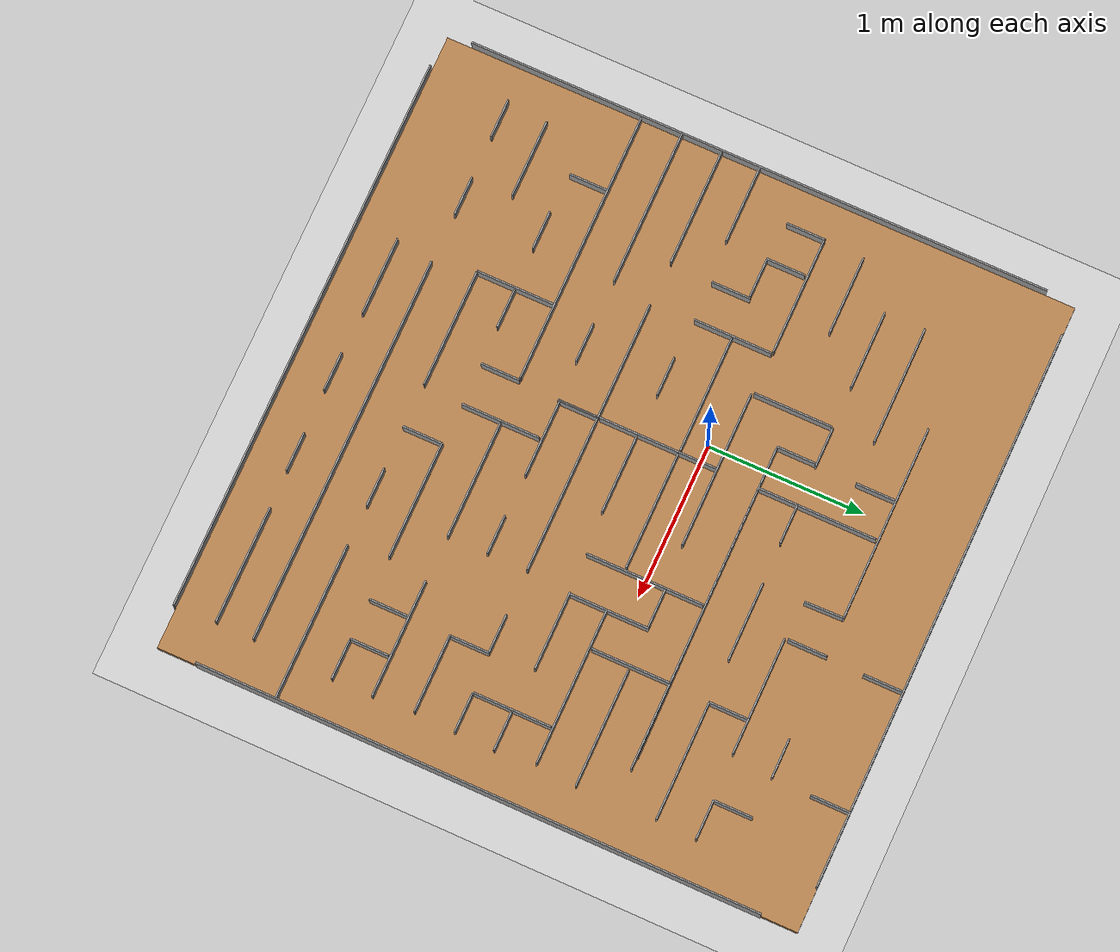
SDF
<sdf version="1.7">
 <world name="default">
  <light name="sun" type="directional">
   <pose>0 0 10 0 -0 0</pose>
   <diffuse>0.8 0.8 0.8 1</diffuse>
   <specular>0.2 0.2 0.2 1</specular>
   <attenuation>
    <range>1000</range>
    <constant>0.9</constant>
    <linear>0.01</linear>
    <quadratic>0.001</quadratic>
   </attenuation>
   <direction>-0.5 0.1 -0.9</direction>
   <spot><inner_angle>0</inner_angle><outer_angle>0</outer_angle><falloff>0</falloff></spot>
  </light>
  <model name="ground_plane">
   <static>1</static>
   <link name="link">
    <collision name="collision">
     <geometry><plane><normal>0 0 1</normal><size>100 100</size></plane></geometry>
     <surface><friction><ode><mu>100</mu><mu2>50</mu2></ode></friction></surface>
    </collision>
    <visual name="visual">
     <cast_shadows>0</cast_shadows>
     <geometry><plane><normal>0 0 1</normal><size>100 100</size></plane></geometry>
     <material>
      <script><uri>file://media/materials/scripts/gazebo.material</uri><name>Gazebo/Grey</name></script>
     </material>
    </visual>
   </link>
  </model>
  <gravity>0 0 -9.8</gravity>
  <magnetic_field>6e-06 2.3e-05 -4.2e-05</magnetic_field>
  <atmosphere type="adiabatic"/>
  <physics type="ode">
   <max_step_size>0.001</max_step_size>
   <real_time_factor>1</real_time_factor>
   <real_time_update_rate>1000</real_time_update_rate>
  </physics>
  <scene><ambient>0.4 0.4 0.4 1</ambient><background>0.7 0.7 0.7 1</background><shadows>1</shadows></scene>
  <audio><device>default</device></audio>
  <spherical_coordinates>
   <surface_model>EARTH_WGS84</surface_model>
   <latitude_deg>0</latitude_deg>
   <longitude_deg>0</longitude_deg>
   <elevation>0</elevation>
   <heading_deg>0</heading_deg>
  </spherical_coordinates>
  <model name="maze">
   <pose>0.391095 -0.403785 0 0 -0 0</pose>
   <link name="Wall_0">
    <collision name="Wall_0_Collision">
     <geometry><box><size>3.75 0.01 0.15</size></box></geometry>
     <pose>0 0 0.075 0 -0 0</pose>
    </collision>
    <visual name="Wall_0_Visual">
     <pose>0 0 0.075 0 -0 0</pose>
     <geometry><box><size>3.75 0.01 0.15</size></box></geometry>
     <material>
      <script><uri>file://media/materials/scripts/gazebo.material</uri><name>Gazebo/Grey</name></script>
      <ambient>1 1 1 1</ambient>
     </material>
     <meta><layer>0</layer></meta>
    </visual>
    <pose>-2.04852 -0.009278 0 0 -0 -1.5708</pose>
   </link>
   <link name="Wall_102">
    <collision name="Wall_102_Collision">
     <geometry><box><size>0.25 0.01 0.15</size></box></geometry>
     <pose>0 0 0.075 0 -0 0</pose>
    </collision>
    <visual name="Wall_102_Visual">
     <pose>0 0 0.075 0 -0 0</pose>
     <geometry><box><size>0.25 0.01 0.15</size></box></geometry>
     <material>
      <script><uri>file://media/materials/scripts/gazebo.material</uri><name>Gazebo/Grey</name></script>
      <ambient>1 1 1 1</ambient>
     </material>
     <meta><layer>0</layer></meta>
    </visual>
    <pose>-1.54623 0.39257 0 0 -0 -1.5708</pose>
   </link>
   <link name="Wall_104">
    <collision name="Wall_104_Collision">
     <geometry><box><size>0.25 0.01 0.15</size></box></geometry>
     <pose>0 0 0.075 0 -0 0</pose>
    </collision>
    <visual name="Wall_104_Visual">
     <pose>0 0 0.075 0 -0 0</pose>
     <geometry><box><size>0.25 0.01 0.15</size></box></geometry>
     <material>
      <script><uri>file://media/materials/scripts/gazebo.material</uri><name>Gazebo/Grey</name></script>
      <ambient>1 1 1 1</ambient>
     </material>
     <meta><layer>0</layer></meta>
    </visual>
    <pose>-1.28266 0.153837 0 0 -0 1.5708</pose>
   </link>
   <link name="Wall_106">
    <collision name="Wall_106_Collision">
     <geometry><box><size>0.25 0.01 0.15</size></box></geometry>
     <pose>0 0 0.075 0 -0 0</pose>
    </collision>
    <visual name="Wall_106_Visual">
     <pose>0 0 0.075 0 -0 0</pose>
     <geometry><box><size>0.25 0.01 0.15</size></box></geometry>
     <material>
      <script><uri>file://media/materials/scripts/gazebo.material</uri><name>Gazebo/Grey</name></script>
      <ambient>1 1 1 1</ambient>
     </material>
     <meta><layer>0</layer></meta>
    </visual>
    <pose>-1.41897 0.271372 0 0 -0 0</pose>
   </link>
   <link name="Wall_108">
    <collision name="Wall_108_Collision">
     <geometry><box><size>0.25 0.01 0.15</size></box></geometry>
     <pose>0 0 0.075 0 -0 0</pose>
    </collision>
    <visual name="Wall_108_Visual">
     <pose>0 0 0.075 0 -0 0</pose>
     <geometry><box><size>0.25 0.01 0.15</size></box></geometry>
     <material>
      <script><uri>file://media/materials/scripts/gazebo.material</uri><name>Gazebo/Grey</name></script>
      <ambient>1 1 1 1</ambient>
     </material>
     <meta><layer>0</layer></meta>
    </visual>
    <pose>-0.645595 0.014278 0 0 -0 0</pose>
   </link>
   <link name="Wall_11">
    <collision name="Wall_11_Collision">
     <geometry><box><size>1.25042 0.01 0.15</size></box></geometry>
     <pose>0 0 0.075 0 -0 0</pose>
    </collision>
    <visual name="Wall_11_Visual">
     <pose>0 0 0.075 0 -0 0</pose>
     <geometry><box><size>1.25042 0.01 0.15</size></box></geometry>
     <material>
      <script><uri>file://media/materials/scripts/gazebo.material</uri><name>Gazebo/Grey</name></script>
      <ambient>1 1 1 1</ambient>
     </material>
     <meta><layer>0</layer></meta>
    </visual>
    <pose>-0.363743 1.55748 0 0 -0 -0.000371</pose>
   </link>
   <link name="Wall_110">
    <collision name="Wall_110_Collision">
     <geometry><box><size>0.75 0.01 0.15</size></box></geometry>
     <pose>0 0 0.075 0 -0 0</pose>
    </collision>
    <visual name="Wall_110_Visual">
     <pose>0 0 0.075 0 -0 0</pose>
     <geometry><box><size>0.75 0.01 0.15</size></box></geometry>
     <material>
      <script><uri>file://media/materials/scripts/gazebo.material</uri><name>Gazebo/Grey</name></script>
      <ambient>1 1 1 1</ambient>
     </material>
     <meta><layer>0</layer></meta>
    </visual>
    <pose>0.128728 0.272801 0 0 -0 0</pose>
   </link>
   <link name="Wall_112">
    <collision name="Wall_112_Collision">
     <geometry><box><size>0.75 0.01 0.15</size></box></geometry>
     <pose>0 0 0.075 0 -0 0</pose>
    </collision>
    <visual name="Wall_112_Visual">
     <pose>0 0 0.075 0 -0 0</pose>
     <geometry><box><size>0.75 0.01 0.15</size></box></geometry>
     <material>
      <script><uri>file://media/materials/scripts/gazebo.material</uri><name>Gazebo/Grey</name></script>
      <ambient>1 1 1 1</ambient>
     </material>
     <meta><layer>0</layer></meta>
    </visual>
    <pose>1.42859 0.536 0 0 -0 0</pose>
   </link>
   <link name="Wall_114">
    <collision name="Wall_114_Collision">
     <geometry><box><size>1 0.01 0.15</size></box></geometry>
     <pose>0 0 0.075 0 -0 0</pose>
    </collision>
    <visual name="Wall_114_Visual">
     <pose>0 0 0.075 0 -0 0</pose>
     <geometry><box><size>1 0.01 0.15</size></box></geometry>
     <material>
      <script><uri>file://media/materials/scripts/gazebo.material</uri><name>Gazebo/Grey</name></script>
      <ambient>1 1 1 1</ambient>
     </material>
     <meta><layer>0</layer></meta>
    </visual>
    <pose>1.27747 0.273813 0 0 -0 0</pose>
   </link>
   <link name="Wall_116">
    <collision name="Wall_116_Collision">
     <geometry><box><size>0.5 0.01 0.15</size></box></geometry>
     <pose>0 0 0.075 0 -0 0</pose>
    </collision>
    <visual name="Wall_116_Visual">
     <pose>0 0 0.075 0 -0 0</pose>
     <geometry><box><size>0.5 0.01 0.15</size></box></geometry>
     <material>
      <script><uri>file://media/materials/scripts/gazebo.material</uri><name>Gazebo/Grey</name></script>
      <ambient>1 1 1 1</ambient>
     </material>
     <meta><layer>0</layer></meta>
    </visual>
    <pose>1.02562 0.538471 0 0 -0 -1.5708</pose>
   </link>
   <link name="Wall_119">
    <collision name="Wall_119_Collision">
     <geometry><box><size>0.25 0.01 0.15</size></box></geometry>
     <pose>0 0 0.075 0 -0 0</pose>
    </collision>
    <visual name="Wall_119_Visual">
     <pose>0 0 0.075 0 -0 0</pose>
     <geometry><box><size>0.25 0.01 0.15</size></box></geometry>
     <material>
      <script><uri>file://media/materials/scripts/gazebo.material</uri><name>Gazebo/Grey</name></script>
      <ambient>1 1 1 1</ambient>
     </material>
     <meta><layer>0</layer></meta>
    </visual>
    <pose>-1.79408 0.415077 0 0 -0 -1.5708</pose>
   </link>
   <link name="Wall_121">
    <collision name="Wall_121_Collision">
     <geometry><box><size>0.5 0.01 0.15</size></box></geometry>
     <pose>0 0 0.075 0 -0 0</pose>
    </collision>
    <visual name="Wall_121_Visual">
     <pose>0 0 0.075 0 -0 0</pose>
     <geometry><box><size>0.5 0.01 0.15</size></box></geometry>
     <material>
      <script><uri>file://media/materials/scripts/gazebo.material</uri><name>Gazebo/Grey</name></script>
      <ambient>1 1 1 1</ambient>
     </material>
     <meta><layer>0</layer></meta>
    </visual>
    <pose>-0.774171 -1.01942 0 0 -0 -1.5708</pose>
   </link>
   <link name="Wall_126">
    <collision name="Wall_126_Collision">
     <geometry><box><size>0.25 0.01 0.15</size></box></geometry>
     <pose>0 0 0.075 0 -0 0</pose>
    </collision>
    <visual name="Wall_126_Visual">
     <pose>0 0 0.075 0 -0 0</pose>
     <geometry><box><size>0.25 0.01 0.15</size></box></geometry>
     <material>
      <script><uri>file://media/materials/scripts/gazebo.material</uri><name>Gazebo/Grey</name></script>
      <ambient>1 1 1 1</ambient>
     </material>
     <meta><layer>0</layer></meta>
    </visual>
    <pose>-0.636927 -0.507446 0 0 -0 0</pose>
   </link>
   <link name="Wall_129">
    <collision name="Wall_129_Collision">
     <geometry><box><size>1 0.01 0.15</size></box></geometry>
     <pose>0 0 0.075 0 -0 0</pose>
    </collision>
    <visual name="Wall_129_Visual">
     <pose>0 0 0.075 0 -0 0</pose>
     <geometry><box><size>1 0.01 0.15</size></box></geometry>
     <material>
      <script><uri>file://media/materials/scripts/gazebo.material</uri><name>Gazebo/Grey</name></script>
      <ambient>1 1 1 1</ambient>
     </material>
     <meta><layer>0</layer></meta>
    </visual>
    <pose>-1.54984 -0.503396 0 0 -0 0</pose>
   </link>
   <link name="Wall_131">
    <collision name="Wall_131_Collision">
     <geometry><box><size>0.25 0.01 0.15</size></box></geometry>
     <pose>0 0 0.075 0 -0 0</pose>
    </collision>
    <visual name="Wall_131_Visual">
     <pose>0 0 0.075 0 -0 0</pose>
     <geometry><box><size>0.25 0.01 0.15</size></box></geometry>
     <material>
      <script><uri>file://media/materials/scripts/gazebo.material</uri><name>Gazebo/Grey</name></script>
      <ambient>1 1 1 1</ambient>
     </material>
     <meta><layer>0</layer></meta>
    </visual>
    <pose>0.632906 -0.503537 0 0 -0 0</pose>
   </link>
   <link name="Wall_133">
    <collision name="Wall_133_Collision">
     <geometry><box><size>0.75 0.01 0.25</size></box></geometry>
     <pose>0 0 0.075 0 -0 0</pose>
    </collision>
    <visual name="Wall_133_Visual">
     <pose>0 0 0.075 0 -0 0</pose>
     <geometry><box><size>0.75 0.01 0.15</size></box></geometry>
     <material>
      <script><uri>file://media/materials/scripts/gazebo.material</uri><name>Gazebo/Grey</name></script>
      <ambient>1 1 1 1</ambient>
     </material>
     <meta><layer>0</layer></meta>
    </visual>
    <pose>0.385074 -0.758803 0 0 -0 0</pose>
   </link>
   <link name="Wall_135">
    <collision name="Wall_135_Collision">
     <geometry><box><size>0.75 0.01 0.15</size></box></geometry>
     <pose>0 0 0.075 0 -0 0</pose>
    </collision>
    <visual name="Wall_135_Visual">
     <pose>0 0 0.075 0 -0 0</pose>
     <geometry><box><size>0.75 0.01 0.15</size></box></geometry>
     <material>
      <script><uri>file://media/materials/scripts/gazebo.material</uri><name>Gazebo/Grey</name></script>
      <ambient>1 1 1 1</ambient>
     </material>
     <meta><layer>0</layer></meta>
    </visual>
    <pose>0.636902 -1.02178 0 0 -0 0</pose>
   </link>
   <link name="Wall_137">
    <collision name="Wall_137_Collision">
     <geometry><box><size>0.25 0.01 0.15</size></box></geometry>
     <pose>0 0 0.075 0 -0 0</pose>
    </collision>
    <visual name="Wall_137_Visual">
     <pose>0 0 0.075 0 -0 0</pose>
     <geometry><box><size>0.25 0.01 0.15</size></box></geometry>
     <material>
      <script><uri>file://media/materials/scripts/gazebo.material</uri><name>Gazebo/Grey</name></script>
      <ambient>1 1 1 1</ambient>
     </material>
     <meta><layer>0</layer></meta>
    </visual>
    <pose>-0.270621 -0.887203 0 0 -0 -1.5708</pose>
   </link>
   <link name="Wall_139">
    <collision name="Wall_139_Collision">
     <geometry><box><size>0.5 0.01 0.15</size></box></geometry>
     <pose>0 0 0.075 0 -0 0</pose>
    </collision>
    <visual name="Wall_139_Visual">
     <pose>0 0 0.075 0 -0 0</pose>
     <geometry><box><size>0.5 0.01 0.15</size></box></geometry>
     <material>
      <script><uri>file://media/materials/scripts/gazebo.material</uri><name>Gazebo/Grey</name></script>
      <ambient>1 1 1 1</ambient>
     </material>
     <meta><layer>0</layer></meta>
    </visual>
    <pose>-1.53306 -1.27119 0 0 -0 0</pose>
   </link>
   <link name="Wall_141">
    <collision name="Wall_141_Collision">
     <geometry><box><size>2.5 0.01 0.15</size></box></geometry>
     <pose>0 0 0.075 0 -0 0</pose>
    </collision>
    <visual name="Wall_141_Visual">
     <pose>0 0 0.075 0 -0 0</pose>
     <geometry><box><size>2.5 0.01 0.15</size></box></geometry>
     <material>
      <script><uri>file://media/materials/scripts/gazebo.material</uri><name>Gazebo/Grey</name></script>
      <ambient>1 1 1 1</ambient>
     </material>
     <meta><layer>0</layer></meta>
    </visual>
    <pose>0.533615 -1.54052 0 0 -0 0</pose>
   </link>
   <link name="Wall_143">
    <collision name="Wall_143_Collision">
     <geometry><box><size>0.25 0.01 0.15</size></box></geometry>
     <pose>0 0 0.075 0 -0 0</pose>
    </collision>
    <visual name="Wall_143_Visual">
     <pose>0 0 0.075 0 -0 0</pose>
     <geometry><box><size>0.25 0.01 0.15</size></box></geometry>
     <material>
      <script><uri>file://media/materials/scripts/gazebo.material</uri><name>Gazebo/Grey</name></script>
      <ambient>1 1 1 1</ambient>
     </material>
     <meta><layer>0</layer></meta>
    </visual>
    <pose>-1.68685 -1.5361 0 0 -0 0</pose>
   </link>
   <link name="Wall_145">
    <collision name="Wall_145_Collision">
     <geometry><box><size>0.25 0.01 0.15</size></box></geometry>
     <pose>0 0 0.075 0 -0 0</pose>
    </collision>
    <visual name="Wall_145_Visual">
     <pose>0 0 0.075 0 -0 0</pose>
     <geometry><box><size>0.25 0.01 0.15</size></box></geometry>
     <material>
      <script><uri>file://media/materials/scripts/gazebo.material</uri><name>Gazebo/Grey</name></script>
      <ambient>1 1 1 1</ambient>
     </material>
     <meta><layer>0</layer></meta>
    </visual>
    <pose>-1.16158 -1.53572 0 0 -0 0</pose>
   </link>
   <link name="Wall_147">
    <collision name="Wall_147_Collision">
     <geometry><box><size>0.5 0.01 0.15</size></box></geometry>
     <pose>0 0 0.075 0 -0 0</pose>
    </collision>
    <visual name="Wall_147_Visual">
     <pose>0 0 0.075 0 -0 0</pose>
     <geometry><box><size>0.5 0.01 0.15</size></box></geometry>
     <material>
      <script><uri>file://media/materials/scripts/gazebo.material</uri><name>Gazebo/Grey</name></script>
      <ambient>1 1 1 1</ambient>
     </material>
     <meta><layer>0</layer></meta>
    </visual>
    <pose>-0.510057 -1.78164 0 0 -0 0</pose>
   </link>
   <link name="Wall_149">
    <collision name="Wall_149_Collision">
     <geometry><box><size>0.25 0.01 0.15</size></box></geometry>
     <pose>0 0 0.075 0 -0 0</pose>
    </collision>
    <visual name="Wall_149_Visual">
     <pose>0 0 0.075 0 -0 0</pose>
     <geometry><box><size>0.25 0.01 0.15</size></box></geometry>
     <material>
      <script><uri>file://media/materials/scripts/gazebo.material</uri><name>Gazebo/Grey</name></script>
      <ambient>1 1 1 1</ambient>
     </material>
     <meta><layer>0</layer></meta>
    </visual>
    <pose>0.13213 -1.79207 0 0 -0 0</pose>
   </link>
   <link name="Wall_15">
    <collision name="Wall_15_Collision">
     <geometry><box><size>0.25 0.01 0.15</size></box></geometry>
     <pose>0 0 0.075 0 -0 0</pose>
    </collision>
    <visual name="Wall_15_Visual">
     <pose>0 0 0.075 0 -0 0</pose>
     <geometry><box><size>0.25 0.01 0.15</size></box></geometry>
     <material>
      <script><uri>file://media/materials/scripts/gazebo.material</uri><name>Gazebo/Grey</name></script>
      <ambient>1 1 1 1</ambient>
     </material>
     <meta><layer>0</layer></meta>
    </visual>
    <pose>0.259424 1.43403 0 0 -0 1.59547</pose>
   </link>
   <link name="Wall_151">
    <collision name="Wall_151_Collision">
     <geometry><box><size>0.25 0.01 0.15</size></box></geometry>
     <pose>0 0 0.075 0 -0 0</pose>
    </collision>
    <visual name="Wall_151_Visual">
     <pose>0 0 0.075 0 -0 0</pose>
     <geometry><box><size>0.25 0.01 0.15</size></box></geometry>
     <material>
      <script><uri>file://media/materials/scripts/gazebo.material</uri><name>Gazebo/Grey</name></script>
      <ambient>1 1 1 1</ambient>
     </material>
     <meta><layer>0</layer></meta>
    </visual>
    <pose>0.663706 -1.78969 0 0 -0 0</pose>
   </link>
   <link name="Wall_153">
    <collision name="Wall_153_Collision">
     <geometry><box><size>0.75 0.01 0.15</size></box></geometry>
     <pose>0 0 0.075 0 -0 0</pose>
    </collision>
    <visual name="Wall_153_Visual">
     <pose>0 0 0.075 0 -0 0</pose>
     <geometry><box><size>0.75 0.01 0.15</size></box></geometry>
     <material>
      <script><uri>file://media/materials/scripts/gazebo.material</uri><name>Gazebo/Grey</name></script>
      <ambient>1 1 1 1</ambient>
     </material>
     <meta><layer>0</layer></meta>
    </visual>
    <pose>1.40532 -1.78262 0 0 -0 0</pose>
   </link>
   <link name="Wall_155">
    <collision name="Wall_155_Collision">
     <geometry><box><size>0.75 0.01 0.15</size></box></geometry>
     <pose>0 0 0.075 0 -0 0</pose>
    </collision>
    <visual name="Wall_155_Visual">
     <pose>0 0 0.075 0 -0 0</pose>
     <geometry><box><size>0.75 0.01 0.15</size></box></geometry>
     <material>
      <script><uri>file://media/materials/scripts/gazebo.material</uri><name>Gazebo/Grey</name></script>
      <ambient>1 1 1 1</ambient>
     </material>
     <meta><layer>0</layer></meta>
    </visual>
    <pose>-0.39167 -1.26751 0 0 -0 0</pose>
   </link>
   <link name="Wall_157">
    <collision name="Wall_157_Collision">
     <geometry><box><size>1 0.01 0.15</size></box></geometry>
     <pose>0 0 0.075 0 -0 0</pose>
    </collision>
    <visual name="Wall_157_Visual">
     <pose>0 0 0.075 0 -0 0</pose>
     <geometry><box><size>1 0.01 0.15</size></box></geometry>
     <material>
      <script><uri>file://media/materials/scripts/gazebo.material</uri><name>Gazebo/Grey</name></script>
      <ambient>1 1 1 1</ambient>
     </material>
     <meta><layer>0</layer></meta>
    </visual>
    <pose>1.54664 -1.27343 0 0 -0 0</pose>
   </link>
   <link name="Wall_159">
    <collision name="Wall_159_Collision">
     <geometry><box><size>0.25 0.01 0.15</size></box></geometry>
     <pose>0 0 0.075 0 -0 0</pose>
    </collision>
    <visual name="Wall_159_Visual">
     <pose>0 0 0.075 0 -0 0</pose>
     <geometry><box><size>0.25 0.01 0.15</size></box></geometry>
     <material>
      <script><uri>file://media/materials/scripts/gazebo.material</uri><name>Gazebo/Grey</name></script>
      <ambient>1 1 1 1</ambient>
     </material>
     <meta><layer>0</layer></meta>
    </visual>
    <pose>0.265955 -1.15096 0 0 -0 -1.5708</pose>
   </link>
   <link name="Wall_161">
    <collision name="Wall_161_Collision">
     <geometry><box><size>0.25 0.01 0.15</size></box></geometry>
     <pose>0 0 0.075 0 -0 0</pose>
    </collision>
    <visual name="Wall_161_Visual">
     <pose>0 0 0.075 0 -0 0</pose>
     <geometry><box><size>0.25 0.01 0.15</size></box></geometry>
     <material>
      <script><uri>file://media/materials/scripts/gazebo.material</uri><name>Gazebo/Grey</name></script>
      <ambient>1 1 1 1</ambient>
     </material>
     <meta><layer>0</layer></meta>
    </visual>
    <pose>0.664962 -1.26981 0 0 -0 0</pose>
   </link>
   <link name="Wall_163">
    <collision name="Wall_163_Collision">
     <geometry><box><size>0.25 0.01 0.15</size></box></geometry>
     <pose>0 0 0.075 0 -0 0</pose>
    </collision>
    <visual name="Wall_163_Visual">
     <pose>0 0 0.075 0 -0 0</pose>
     <geometry><box><size>0.25 0.01 0.15</size></box></geometry>
     <material>
      <script><uri>file://media/materials/scripts/gazebo.material</uri><name>Gazebo/Grey</name></script>
      <ambient>1 1 1 1</ambient>
     </material>
     <meta><layer>0</layer></meta>
    </visual>
    <pose>1.68471 -1.02328 0 0 -0 0</pose>
   </link>
   <link name="Wall_165">
    <collision name="Wall_165_Collision">
     <geometry><box><size>0.75 0.01 0.15</size></box></geometry>
     <pose>0 0 0.075 0 -0 0</pose>
    </collision>
    <visual name="Wall_165_Visual">
     <pose>0 0 0.075 0 -0 0</pose>
     <geometry><box><size>0.75 0.01 0.15</size></box></geometry>
     <material>
      <script><uri>file://media/materials/scripts/gazebo.material</uri><name>Gazebo/Grey</name></script>
      <ambient>1 1 1 1</ambient>
     </material>
     <meta><layer>0</layer></meta>
    </visual>
    <pose>1.43081 -0.765344 0 0 -0 0</pose>
   </link>
   <link name="Wall_167">
    <collision name="Wall_167_Collision">
     <geometry><box><size>0.25 0.01 0.15</size></box></geometry>
     <pose>0 0 0.075 0 -0 0</pose>
    </collision>
    <visual name="Wall_167_Visual">
     <pose>0 0 0.075 0 -0 0</pose>
     <geometry><box><size>0.25 0.01 0.15</size></box></geometry>
     <material>
      <script><uri>file://media/materials/scripts/gazebo.material</uri><name>Gazebo/Grey</name></script>
      <ambient>1 1 1 1</ambient>
     </material>
     <meta><layer>0</layer></meta>
    </visual>
    <pose>1.54938 -0.899387 0 0 -0 -1.5708</pose>
   </link>
   <link name="Wall_169">
    <collision name="Wall_169_Collision">
     <geometry><box><size>0.25 0.01 0.15</size></box></geometry>
     <pose>0 0 0.075 0 -0 0</pose>
    </collision>
    <visual name="Wall_169_Visual">
     <pose>0 0 0.075 0 -0 0</pose>
     <geometry><box><size>0.25 0.01 0.15</size></box></geometry>
     <material>
      <script><uri>file://media/materials/scripts/gazebo.material</uri><name>Gazebo/Grey</name></script>
      <ambient>1 1 1 1</ambient>
     </material>
     <meta><layer>0</layer></meta>
    </visual>
    <pose>1.28994 -0.896073 0 0 -0 -1.5708</pose>
   </link>
   <link name="Wall_17">
    <collision name="Wall_17_Collision">
     <geometry><box><size>0.25 0.01 0.15</size></box></geometry>
     <pose>0 0 0.075 0 -0 0</pose>
    </collision>
    <visual name="Wall_17_Visual">
     <pose>0 0 0.075 0 -0 0</pose>
     <geometry><box><size>0.25 0.01 0.15</size></box></geometry>
     <material>
      <script><uri>file://media/materials/scripts/gazebo.material</uri><name>Gazebo/Grey</name></script>
      <ambient>1 1 1 1</ambient>
     </material>
     <meta><layer>0</layer></meta>
    </visual>
    <pose>-0.511561 1.42522 0 0 -0 -1.5708</pose>
   </link>
   <link name="Wall_171">
    <collision name="Wall_171_Collision">
     <geometry><box><size>0.25 0.01 0.15</size></box></geometry>
     <pose>0 0 0.075 0 -0 0</pose>
    </collision>
    <visual name="Wall_171_Visual">
     <pose>0 0 0.075 0 -0 0</pose>
     <geometry><box><size>0.25 0.01 0.15</size></box></geometry>
     <material>
      <script><uri>file://media/materials/scripts/gazebo.material</uri><name>Gazebo/Grey</name></script>
      <ambient>1 1 1 1</ambient>
     </material>
     <meta><layer>0</layer></meta>
    </visual>
    <pose>-0.637506 -1.01812 0 0 -0 0</pose>
   </link>
   <link name="Wall_173">
    <collision name="Wall_173_Collision">
     <geometry><box><size>0.25 0.01 0.15</size></box></geometry>
     <pose>0 0 0.075 0 -0 0</pose>
    </collision>
    <visual name="Wall_173_Visual">
     <pose>0 0 0.075 0 -0 0</pose>
     <geometry><box><size>0.25 0.01 0.15</size></box></geometry>
     <material>
      <script><uri>file://media/materials/scripts/gazebo.material</uri><name>Gazebo/Grey</name></script>
      <ambient>1 1 1 1</ambient>
     </material>
     <meta><layer>0</layer></meta>
    </visual>
    <pose>1.16644 1.55581 0 0 -0 0</pose>
   </link>
   <link name="Wall_175">
    <collision name="Wall_175_Collision">
     <geometry><box><size>0.25 0.01 0.15</size></box></geometry>
     <pose>0 0 0.075 0 -0 0</pose>
    </collision>
    <visual name="Wall_175_Visual">
     <pose>0 0 0.075 0 -0 0</pose>
     <geometry><box><size>0.25 0.01 0.15</size></box></geometry>
     <material>
      <script><uri>file://media/materials/scripts/gazebo.material</uri><name>Gazebo/Grey</name></script>
      <ambient>1 1 1 1</ambient>
     </material>
     <meta><layer>0</layer></meta>
    </visual>
    <pose>1.67711 1.30049 0 0 -0 0</pose>
   </link>
   <link name="Wall_178">
    <collision name="Wall_178_Collision">
     <geometry><box><size>0.25 0.01 0.15</size></box></geometry>
     <pose>0 0 0.075 0 -0 0</pose>
    </collision>
    <visual name="Wall_178_Visual">
     <pose>0 0 0.075 0 -0 0</pose>
     <geometry><box><size>0.25 0.01 0.15</size></box></geometry>
     <material>
      <script><uri>file://media/materials/scripts/gazebo.material</uri><name>Gazebo/Grey</name></script>
      <ambient>1 1 1 1</ambient>
     </material>
     <meta><layer>0</layer></meta>
    </visual>
    <pose>1.55316 1.42473 0 0 -0 1.5708</pose>
   </link>
   <link name="Wall_180">
    <collision name="Wall_180_Collision">
     <geometry><box><size>0.25 0.01 0.15</size></box></geometry>
     <pose>0 0 0.075 0 -0 0</pose>
    </collision>
    <visual name="Wall_180_Visual">
     <pose>0 0 0.075 0 -0 0</pose>
     <geometry><box><size>0.25 0.01 0.15</size></box></geometry>
     <material>
      <script><uri>file://media/materials/scripts/gazebo.material</uri><name>Gazebo/Grey</name></script>
      <ambient>1 1 1 1</ambient>
     </material>
     <meta><layer>0</layer></meta>
    </visual>
    <pose>1.03523 1.16391 0 0 -0 -1.5708</pose>
   </link>
   <link name="Wall_183">
    <collision name="Wall_183_Collision">
     <geometry><box><size>0.25 0.01 0.15</size></box></geometry>
     <pose>0 0 0.075 0 -0 0</pose>
    </collision>
    <visual name="Wall_183_Visual">
     <pose>0 0 0.075 0 -0 0</pose>
     <geometry><box><size>0.25 0.01 0.15</size></box></geometry>
     <material>
      <script><uri>file://media/materials/scripts/gazebo.material</uri><name>Gazebo/Grey</name></script>
      <ambient>1 1 1 1</ambient>
     </material>
     <meta><layer>0</layer></meta>
    </visual>
    <pose>1.29457 -0.371479 0 0 -0 -1.5708</pose>
   </link>
   <link name="Wall_186">
    <collision name="Wall_186_Collision">
     <geometry><box><size>0.5 0.01 0.15</size></box></geometry>
     <pose>0 0 0.075 0 -0 0</pose>
    </collision>
    <visual name="Wall_186_Visual">
     <pose>0 0 0.075 0 -0 0</pose>
     <geometry><box><size>0.5 0.01 0.15</size></box></geometry>
     <material>
      <script><uri>file://media/materials/scripts/gazebo.material</uri><name>Gazebo/Grey</name></script>
      <ambient>1 1 1 1</ambient>
     </material>
     <meta><layer>0</layer></meta>
    </visual>
    <pose>1.54588 0.014899 0 0 -0 1.5708</pose>
   </link>
   <link name="Wall_188">
    <collision name="Wall_188_Collision">
     <geometry><box><size>0.25 0.01 0.15</size></box></geometry>
     <pose>0 0 0.075 0 -0 0</pose>
    </collision>
    <visual name="Wall_188_Visual">
     <pose>0 0 0.075 0 -0 0</pose>
     <geometry><box><size>0.25 0.01 0.15</size></box></geometry>
     <material>
      <script><uri>file://media/materials/scripts/gazebo.material</uri><name>Gazebo/Grey</name></script>
      <ambient>1 1 1 1</ambient>
     </material>
     <meta><layer>0</layer></meta>
    </visual>
    <pose>1.68331 0.01539 0 0 -0 0</pose>
   </link>
   <link name="Wall_19">
    <collision name="Wall_19_Collision">
     <geometry><box><size>0.75 0.01 0.15</size></box></geometry>
     <pose>0 0 0.075 0 -0 0</pose>
    </collision>
    <visual name="Wall_19_Visual">
     <pose>0 0 0.075 0 -0 0</pose>
     <geometry><box><size>0.75 0.01 0.15</size></box></geometry>
     <material>
      <script><uri>file://media/materials/scripts/gazebo.material</uri><name>Gazebo/Grey</name></script>
      <ambient>1 1 1 1</ambient>
     </material>
     <meta><layer>0</layer></meta>
    </visual>
    <pose>-0.251268 1.16796 0 0 -0 -1.5708</pose>
   </link>
   <link name="Wall_190">
    <collision name="Wall_190_Collision">
     <geometry><box><size>0.25 0.01 0.15</size></box></geometry>
     <pose>0 0 0.075 0 -0 0</pose>
    </collision>
    <visual name="Wall_190_Visual">
     <pose>0 0 0.075 0 -0 0</pose>
     <geometry><box><size>0.25 0.01 0.15</size></box></geometry>
     <material>
      <script><uri>file://media/materials/scripts/gazebo.material</uri><name>Gazebo/Grey</name></script>
      <ambient>1 1 1 1</ambient>
     </material>
     <meta><layer>0</layer></meta>
    </visual>
    <pose>1.67808 -0.237704 0 0 -0 0</pose>
   </link>
   <link name="Wall_21">
    <collision name="Wall_21_Collision">
     <geometry><box><size>0.25 0.01 0.15</size></box></geometry>
     <pose>0 0 0.075 0 -0 0</pose>
    </collision>
    <visual name="Wall_21_Visual">
     <pose>0 0 0.075 0 -0 0</pose>
     <geometry><box><size>0.25 0.01 0.15</size></box></geometry>
     <material>
      <script><uri>file://media/materials/scripts/gazebo.material</uri><name>Gazebo/Grey</name></script>
      <ambient>1 1 1 1</ambient>
     </material>
     <meta><layer>0</layer></meta>
    </visual>
    <pose>-0.124499 1.03794 0 0 -0 0</pose>
   </link>
   <link name="Wall_23">
    <collision name="Wall_23_Collision">
     <geometry><box><size>0.5 0.01 0.15</size></box></geometry>
     <pose>0 0 0.075 0 -0 0</pose>
    </collision>
    <visual name="Wall_23_Visual">
     <pose>0 0 0.075 0 -0 0</pose>
     <geometry><box><size>0.5 0.01 0.15</size></box></geometry>
     <material>
      <script><uri>file://media/materials/scripts/gazebo.material</uri><name>Gazebo/Grey</name></script>
      <ambient>1 1 1 1</ambient>
     </material>
     <meta><layer>0</layer></meta>
    </visual>
    <pose>0.508875 1.04303 0 0 -0 0</pose>
   </link>
   <link name="Wall_25">
    <collision name="Wall_25_Collision">
     <geometry><box><size>0.25 0.01 0.15</size></box></geometry>
     <pose>0 0 0.075 0 -0 0</pose>
    </collision>
    <visual name="Wall_25_Visual">
     <pose>0 0 0.075 0 -0 0</pose>
     <geometry><box><size>0.25 0.01 0.15</size></box></geometry>
     <material>
      <script><uri>file://media/materials/scripts/gazebo.material</uri><name>Gazebo/Grey</name></script>
      <ambient>1 1 1 1</ambient>
     </material>
     <meta><layer>0</layer></meta>
    </visual>
    <pose>0.505992 1.43608 0 0 -0 -1.5708</pose>
   </link>
   <link name="Wall_27">
    <collision name="Wall_27_Collision">
     <geometry><box><size>0.75 0.01 0.15</size></box></geometry>
     <pose>0 0 0.075 0 -0 0</pose>
    </collision>
    <visual name="Wall_27_Visual">
     <pose>0 0 0.075 0 -0 0</pose>
     <geometry><box><size>0.75 0.01 0.15</size></box></geometry>
     <material>
      <script><uri>file://media/materials/scripts/gazebo.material</uri><name>Gazebo/Grey</name></script>
      <ambient>1 1 1 1</ambient>
     </material>
     <meta><layer>0</layer></meta>
    </visual>
    <pose>-1.16076 1.29755 0 0 -0 0</pose>
   </link>
   <link name="Wall_29">
    <collision name="Wall_29_Collision">
     <geometry><box><size>0.75 0.01 0.15</size></box></geometry>
     <pose>0 0 0.075 0 -0 0</pose>
    </collision>
    <visual name="Wall_29_Visual">
     <pose>0 0 0.075 0 -0 0</pose>
     <geometry><box><size>0.75 0.01 0.15</size></box></geometry>
     <material>
      <script><uri>file://media/materials/scripts/gazebo.material</uri><name>Gazebo/Grey</name></script>
      <ambient>1 1 1 1</ambient>
     </material>
     <meta><layer>0</layer></meta>
    </visual>
    <pose>0.883463 1.29196 0 0 -0 0</pose>
   </link>
   <link name="Wall_3">
    <collision name="Wall_3_Collision">
     <geometry><box><size>3.61 0.01 0.15</size></box></geometry>
     <pose>0 0 0.075 0 -0 0</pose>
    </collision>
    <visual name="Wall_3_Visual">
     <pose>0 0 0.075 0 -0 0</pose>
     <geometry><box><size>3.61 0.01 0.15</size></box></geometry>
     <material>
      <script><uri>file://media/materials/scripts/gazebo.material</uri><name>Gazebo/Grey</name></script>
      <ambient>1 1 1 1</ambient>
     </material>
     <meta><layer>0</layer></meta>
    </visual>
    <pose>-0.035075 2.05081 0 0 -0 0</pose>
   </link>
   <link name="Wall_31">
    <collision name="Wall_31_Collision">
     <geometry><box><size>0.25 0.01 0.15</size></box></geometry>
     <pose>0 0 0.075 0 -0 0</pose>
    </collision>
    <visual name="Wall_31_Visual">
     <pose>0 0 0.075 0 -0 0</pose>
     <geometry><box><size>0.25 0.01 0.15</size></box></geometry>
     <material>
      <script><uri>file://media/materials/scripts/gazebo.material</uri><name>Gazebo/Grey</name></script>
      <ambient>1 1 1 1</ambient>
     </material>
     <meta><layer>0</layer></meta>
    </visual>
    <pose>0.516965 1.92189 0 0 -0 -1.5708</pose>
   </link>
   <link name="Wall_33">
    <collision name="Wall_33_Collision">
     <geometry><box><size>0.25 0.01 0.15</size></box></geometry>
     <pose>0 0 0.075 0 -0 0</pose>
    </collision>
    <visual name="Wall_33_Visual">
     <pose>0 0 0.075 0 -0 0</pose>
     <geometry><box><size>0.25 0.01 0.15</size></box></geometry>
     <material>
      <script><uri>file://media/materials/scripts/gazebo.material</uri><name>Gazebo/Grey</name></script>
      <ambient>1 1 1 1</ambient>
     </material>
     <meta><layer>0</layer></meta>
    </visual>
    <pose>1.29456 1.92656 0 0 -0 -1.5708</pose>
   </link>
   <link name="Wall_35">
    <collision name="Wall_35_Collision">
     <geometry><box><size>0.75 0.01 0.15</size></box></geometry>
     <pose>0 0 0.075 0 -0 0</pose>
    </collision>
    <visual name="Wall_35_Visual">
     <pose>0 0 0.075 0 -0 0</pose>
     <geometry><box><size>0.75 0.01 0.15</size></box></geometry>
     <material>
      <script><uri>file://media/materials/scripts/gazebo.material</uri><name>Gazebo/Grey</name></script>
      <ambient>1 1 1 1</ambient>
     </material>
     <meta><layer>0</layer></meta>
    </visual>
    <pose>-1.41557 0.534109 0 0 -0 0</pose>
   </link>
   <link name="Wall_37">
    <collision name="Wall_37_Collision">
     <geometry><box><size>0.5 0.01 0.15</size></box></geometry>
     <pose>0 0 0.075 0 -0 0</pose>
    </collision>
    <visual name="Wall_37_Visual">
     <pose>0 0 0.075 0 -0 0</pose>
     <geometry><box><size>0.5 0.01 0.15</size></box></geometry>
     <material>
      <script><uri>file://media/materials/scripts/gazebo.material</uri><name>Gazebo/Grey</name></script>
      <ambient>1 1 1 1</ambient>
     </material>
     <meta><layer>0</layer></meta>
    </visual>
    <pose>-1.53724 0.791059 0 0 -0 0</pose>
   </link>
   <link name="Wall_39">
    <collision name="Wall_39_Collision">
     <geometry><box><size>0.5 0.01 0.15</size></box></geometry>
     <pose>0 0 0.075 0 -0 0</pose>
    </collision>
    <visual name="Wall_39_Visual">
     <pose>0 0 0.075 0 -0 0</pose>
     <geometry><box><size>0.5 0.01 0.15</size></box></geometry>
     <material>
      <script><uri>file://media/materials/scripts/gazebo.material</uri><name>Gazebo/Grey</name></script>
      <ambient>1 1 1 1</ambient>
     </material>
     <meta><layer>0</layer></meta>
    </visual>
    <pose>-1.28216 1.04071 0 0 -0 0</pose>
   </link>
   <link name="Wall_42">
    <collision name="Wall_42_Collision">
     <geometry><box><size>0.25 0.01 0.15</size></box></geometry>
     <pose>0 0 0.075 0 -0 0</pose>
    </collision>
    <visual name="Wall_42_Visual">
     <pose>0 0 0.075 0 -0 0</pose>
     <geometry><box><size>0.25 0.01 0.15</size></box></geometry>
     <material>
      <script><uri>file://media/materials/scripts/gazebo.material</uri><name>Gazebo/Grey</name></script>
      <ambient>1 1 1 1</ambient>
     </material>
     <meta><layer>0</layer></meta>
    </visual>
    <pose>-0.637157 1.04159 0 0 -0 0</pose>
   </link>
   <link name="Wall_44">
    <collision name="Wall_44_Collision">
     <geometry><box><size>0.75 0.01 0.15</size></box></geometry>
     <pose>0 0 0.075 0 -0 0</pose>
    </collision>
    <visual name="Wall_44_Visual">
     <pose>0 0 0.075 0 -0 0</pose>
     <geometry><box><size>0.75 0.01 0.15</size></box></geometry>
     <material>
      <script><uri>file://media/materials/scripts/gazebo.material</uri><name>Gazebo/Grey</name></script>
      <ambient>1 1 1 1</ambient>
     </material>
     <meta><layer>0</layer></meta>
    </visual>
    <pose>-0.257207 0.136248 0 0 -0 -1.5708</pose>
   </link>
   <link name="Wall_46">
    <collision name="Wall_46_Collision">
     <geometry><box><size>1 0.01 0.15</size></box></geometry>
     <pose>0 0 0.075 0 -0 0</pose>
    </collision>
    <visual name="Wall_46_Visual">
     <pose>0 0 0.075 0 -0 0</pose>
     <geometry><box><size>1 0.01 0.15</size></box></geometry>
     <material>
      <script><uri>file://media/materials/scripts/gazebo.material</uri><name>Gazebo/Grey</name></script>
      <ambient>1 1 1 1</ambient>
     </material>
     <meta><layer>0</layer></meta>
    </visual>
    <pose>-0.254537 0.518963 0 0 -0 0</pose>
   </link>
   <link name="Wall_48">
    <collision name="Wall_48_Collision">
     <geometry><box><size>0.5 0.01 0.15</size></box></geometry>
     <pose>0 0 0.075 0 -0 0</pose>
    </collision>
    <visual name="Wall_48_Visual">
     <pose>0 0 0.075 0 -0 0</pose>
     <geometry><box><size>0.5 0.01 0.15</size></box></geometry>
     <material>
      <script><uri>file://media/materials/scripts/gazebo.material</uri><name>Gazebo/Grey</name></script>
      <ambient>1 1 1 1</ambient>
     </material>
     <meta><layer>0</layer></meta>
    </visual>
    <pose>-0.7658 0.783582 0 0 -0 -1.5708</pose>
   </link>
   <link name="Wall_5">
    <collision name="Wall_5_Collision">
     <geometry><box><size>4.1 4.09 0.05</size></box></geometry>
     <pose>0 0 0.025 0 -0 0</pose>
    </collision>
    <visual name="Wall_5_Visual">
     <pose>0 0 0.025 0 -0 0</pose>
     <geometry><box><size>4.1 4.09 0.05</size></box></geometry>
     <material>
      <script><uri>file://media/materials/scripts/gazebo.material</uri><name>Gazebo/Wood</name></script>
      <ambient>0.188235 0.188235 0.188235 1</ambient>
     </material>
     <meta><layer>0</layer></meta>
    </visual>
    <pose>0.002906 0.005433 0 0 -0 -1.5708</pose>
   </link>
   <link name="Wall_50">
    <collision name="Wall_50_Collision">
     <geometry><box><size>0.75 0.01 0.15</size></box></geometry>
     <pose>0 0 0.075 0 -0 0</pose>
    </collision>
    <visual name="Wall_50_Visual">
     <pose>0 0 0.075 0 -0 0</pose>
     <geometry><box><size>0.75 0.01 0.15</size></box></geometry>
     <material>
      <script><uri>file://media/materials/scripts/gazebo.material</uri><name>Gazebo/Grey</name></script>
      <ambient>1 1 1 1</ambient>
     </material>
     <meta><layer>0</layer></meta>
    </visual>
    <pose>0.521233 0.40148 0 0 -0 -1.5708</pose>
   </link>
   <link name="Wall_52">
    <collision name="Wall_52_Collision">
     <geometry><box><size>0.5 0.01 0.15</size></box></geometry>
     <pose>0 0 0.075 0 -0 0</pose>
    </collision>
    <visual name="Wall_52_Visual">
     <pose>0 0 0.075 0 -0 0</pose>
     <geometry><box><size>0.5 0.01 0.15</size></box></geometry>
     <material>
      <script><uri>file://media/materials/scripts/gazebo.material</uri><name>Gazebo/Grey</name></script>
      <ambient>1 1 1 1</ambient>
     </material>
     <meta><layer>0</layer></meta>
    </visual>
    <pose>-1.02914 0.278939 0 0 -0 -1.5708</pose>
   </link>
   <link name="Wall_54">
    <collision name="Wall_54_Collision">
     <geometry><box><size>0.5 0.01 0.15</size></box></geometry>
     <pose>0 0 0.075 0 -0 0</pose>
    </collision>
    <visual name="Wall_54_Visual">
     <pose>0 0 0.075 0 -0 0</pose>
     <geometry><box><size>0.5 0.01 0.15</size></box></geometry>
     <material>
      <script><uri>file://media/materials/scripts/gazebo.material</uri><name>Gazebo/Grey</name></script>
      <ambient>1 1 1 1</ambient>
     </material>
     <meta><layer>0</layer></meta>
    </visual>
    <pose>-0.000301 -0.763566 0 0 -0 -1.5708</pose>
   </link>
   <link name="Wall_56">
    <collision name="Wall_56_Collision">
     <geometry><box><size>0.5 0.01 0.15</size></box></geometry>
     <pose>0 0 0.075 0 -0 0</pose>
    </collision>
    <visual name="Wall_56_Visual">
     <pose>0 0 0.075 0 -0 0</pose>
     <geometry><box><size>0.5 0.01 0.15</size></box></geometry>
     <material>
      <script><uri>file://media/materials/scripts/gazebo.material</uri><name>Gazebo/Grey</name></script>
      <ambient>1 1 1 1</ambient>
     </material>
     <meta><layer>0</layer></meta>
    </visual>
    <pose>-1.79909 0.004912 0 0 -0 0</pose>
   </link>
   <link name="Wall_58">
    <collision name="Wall_58_Collision">
     <geometry><box><size>0.75 0.01 0.15</size></box></geometry>
     <pose>0 0 0.075 0 -0 0</pose>
    </collision>
    <visual name="Wall_58_Visual">
     <pose>0 0 0.075 0 -0 0</pose>
     <geometry><box><size>0.75 0.01 0.15</size></box></geometry>
     <material>
      <script><uri>file://media/materials/scripts/gazebo.material</uri><name>Gazebo/Grey</name></script>
      <ambient>1 1 1 1</ambient>
     </material>
     <meta><layer>0</layer></meta>
    </visual>
    <pose>-1.6665 -0.242156 0 0 -0 0</pose>
   </link>
   <link name="Wall_60">
    <collision name="Wall_60_Collision">
     <geometry><box><size>0.75 0.01 0.15</size></box></geometry>
     <pose>0 0 0.075 0 -0 0</pose>
    </collision>
    <visual name="Wall_60_Visual">
     <pose>0 0 0.075 0 -0 0</pose>
     <geometry><box><size>0.75 0.01 0.15</size></box></geometry>
     <material>
      <script><uri>file://media/materials/scripts/gazebo.material</uri><name>Gazebo/Grey</name></script>
      <ambient>1 1 1 1</ambient>
     </material>
     <meta><layer>0</layer></meta>
    </visual>
    <pose>-0.64468 0.275982 0 0 -0 0</pose>
   </link>
   <link name="Wall_62">
    <collision name="Wall_62_Collision">
     <geometry><box><size>0.75 0.01 0.15</size></box></geometry>
     <pose>0 0 0.075 0 -0 0</pose>
    </collision>
    <visual name="Wall_62_Visual">
     <pose>0 0 0.075 0 -0 0</pose>
     <geometry><box><size>0.75 0.01 0.15</size></box></geometry>
     <material>
      <script><uri>file://media/materials/scripts/gazebo.material</uri><name>Gazebo/Grey</name></script>
      <ambient>1 1 1 1</ambient>
     </material>
     <meta><layer>0</layer></meta>
    </visual>
    <pose>-0.630609 -0.248586 0 0 -0 0</pose>
   </link>
   <link name="Wall_64">
    <collision name="Wall_64_Collision">
     <geometry><box><size>0.25 0.01 0.15</size></box></geometry>
     <pose>0 0 0.075 0 -0 0</pose>
    </collision>
    <visual name="Wall_64_Visual">
     <pose>0 0 0.075 0 -0 0</pose>
     <geometry><box><size>0.25 0.01 0.15</size></box></geometry>
     <material>
      <script><uri>file://media/materials/scripts/gazebo.material</uri><name>Gazebo/Grey</name></script>
      <ambient>1 1 1 1</ambient>
     </material>
     <meta><layer>0</layer></meta>
    </visual>
    <pose>-0.523862 0.91093 0 0 -0 -1.5708</pose>
   </link>
   <link name="Wall_66">
    <collision name="Wall_66_Collision">
     <geometry><box><size>0.25 0.01 0.15</size></box></geometry>
     <pose>0 0 0.075 0 -0 0</pose>
    </collision>
    <visual name="Wall_66_Visual">
     <pose>0 0 0.075 0 -0 0</pose>
     <geometry><box><size>0.25 0.01 0.15</size></box></geometry>
     <material>
      <script><uri>file://media/materials/scripts/gazebo.material</uri><name>Gazebo/Grey</name></script>
      <ambient>1 1 1 1</ambient>
     </material>
     <meta><layer>0</layer></meta>
    </visual>
    <pose>-0.389656 0.788579 0 0 -0 0</pose>
   </link>
   <link name="Wall_69">
    <collision name="Wall_69_Collision">
     <geometry><box><size>0.25 0.01 0.15</size></box></geometry>
     <pose>0 0 0.075 0 -0 0</pose>
    </collision>
    <visual name="Wall_69_Visual">
     <pose>0 0 0.075 0 -0 0</pose>
     <geometry><box><size>0.25 0.01 0.15</size></box></geometry>
     <material>
      <script><uri>file://media/materials/scripts/gazebo.material</uri><name>Gazebo/Grey</name></script>
      <ambient>1 1 1 1</ambient>
     </material>
     <meta><layer>0</layer></meta>
    </visual>
    <pose>0.648164 0.536055 0 0 -0 0</pose>
   </link>
   <link name="Wall_7">
    <collision name="Wall_7_Collision">
     <geometry><box><size>3.61 0.01 0.15</size></box></geometry>
     <pose>0 0 0.075 0 -0 0</pose>
    </collision>
    <visual name="Wall_7_Visual">
     <pose>0 0 0.075 0 -0 0</pose>
     <geometry><box><size>3.61 0.01 0.15</size></box></geometry>
     <material>
      <script><uri>file://media/materials/scripts/gazebo.material</uri><name>Gazebo/Grey</name></script>
      <ambient>1 1 1 1</ambient>
     </material>
     <meta><layer>0</layer></meta>
    </visual>
    <pose>2.04852 0.017133 0 0 -0 -1.5708</pose>
   </link>
   <link name="Wall_71">
    <collision name="Wall_71_Collision">
     <geometry><box><size>0.5 0.01 0.15</size></box></geometry>
     <pose>0 0 0.075 0 -0 0</pose>
    </collision>
    <visual name="Wall_71_Visual">
     <pose>0 0 0.075 0 -0 0</pose>
     <geometry><box><size>0.5 0.01 0.15</size></box></geometry>
     <material>
      <script><uri>file://media/materials/scripts/gazebo.material</uri><name>Gazebo/Grey</name></script>
      <ambient>1 1 1 1</ambient>
     </material>
     <meta><layer>0</layer></meta>
    </visual>
    <pose>0.780682 0.291364 0 0 -0 -1.5708</pose>
   </link>
   <link name="Wall_73">
    <collision name="Wall_73_Collision">
     <geometry><box><size>0.5 0.01 0.15</size></box></geometry>
     <pose>0 0 0.075 0 -0 0</pose>
    </collision>
    <visual name="Wall_73_Visual">
     <pose>0 0 0.075 0 -0 0</pose>
     <geometry><box><size>0.5 0.01 0.15</size></box></geometry>
     <material>
      <script><uri>file://media/materials/scripts/gazebo.material</uri><name>Gazebo/Grey</name></script>
      <ambient>1 1 1 1</ambient>
     </material>
     <meta><layer>0</layer></meta>
    </visual>
    <pose>1.02201 0.034651 0 0 -0 0</pose>
   </link>
   <link name="Wall_75">
    <collision name="Wall_75_Collision">
     <geometry><box><size>0.5 0.01 0.15</size></box></geometry>
     <pose>0 0 0.075 0 -0 0</pose>
    </collision>
    <visual name="Wall_75_Visual">
     <pose>0 0 0.075 0 -0 0</pose>
     <geometry><box><size>0.5 0.01 0.15</size></box></geometry>
     <material>
      <script><uri>file://media/materials/scripts/gazebo.material</uri><name>Gazebo/Grey</name></script>
      <ambient>1 1 1 1</ambient>
     </material>
     <meta><layer>0</layer></meta>
    </visual>
    <pose>1.54018 -0.50135 0 0 -0 0</pose>
   </link>
   <link name="Wall_77">
    <collision name="Wall_77_Collision">
     <geometry><box><size>0.25 0.01 0.15</size></box></geometry>
     <pose>0 0 0.075 0 -0 0</pose>
    </collision>
    <visual name="Wall_77_Visual">
     <pose>0 0 0.075 0 -0 0</pose>
     <geometry><box><size>0.25 0.01 0.15</size></box></geometry>
     <material>
      <script><uri>file://media/materials/scripts/gazebo.material</uri><name>Gazebo/Grey</name></script>
      <ambient>1 1 1 1</ambient>
     </material>
     <meta><layer>0</layer></meta>
    </visual>
    <pose>1.17172 -0.250768 0 0 -0 0</pose>
   </link>
   <link name="Wall_79">
    <collision name="Wall_79_Collision">
     <geometry><box><size>0.25 0.01 0.15</size></box></geometry>
     <pose>0 0 0.075 0 -0 0</pose>
    </collision>
    <visual name="Wall_79_Visual">
     <pose>0 0 0.075 0 -0 0</pose>
     <geometry><box><size>0.25 0.01 0.15</size></box></geometry>
     <material>
      <script><uri>file://media/materials/scripts/gazebo.material</uri><name>Gazebo/Grey</name></script>
      <ambient>1 1 1 1</ambient>
     </material>
     <meta><layer>0</layer></meta>
    </visual>
    <pose>-0.255004 -0.381451 0 0 -0 1.5708</pose>
   </link>
   <link name="Wall_80">
    <collision name="Wall_80_Collision">
     <geometry><box><size>0.25 0.01 0.15</size></box></geometry>
     <pose>0 0 0.075 0 -0 0</pose>
    </collision>
    <visual name="Wall_80_Visual">
     <pose>0 0 0.075 0 -0 0</pose>
     <geometry><box><size>0.25 0.01 0.15</size></box></geometry>
     <material>
      <script><uri>file://media/materials/scripts/gazebo.material</uri><name>Gazebo/Grey</name></script>
      <ambient>1 1 1 1</ambient>
     </material>
     <meta><layer>0</layer></meta>
    </visual>
    <pose>-0.252866 -0.381451 0 0 -0 -1.5708</pose>
   </link>
   <link name="Wall_82">
    <collision name="Wall_82_Collision">
     <geometry><box><size>0.5 0.01 0.15</size></box></geometry>
     <pose>0 0 0.075 0 -0 0</pose>
    </collision>
    <visual name="Wall_82_Visual">
     <pose>0 0 0.075 0 -0 0</pose>
     <geometry><box><size>0.5 0.01 0.15</size></box></geometry>
     <material>
      <script><uri>file://media/materials/scripts/gazebo.material</uri><name>Gazebo/Grey</name></script>
      <ambient>1 1 1 1</ambient>
     </material>
     <meta><layer>0</layer></meta>
    </visual>
    <pose>-0.010537 -0.495037 0 0 -0 0</pose>
   </link>
   <link name="Wall_84">
    <collision name="Wall_84_Collision">
     <geometry><box><size>0.5 0.01 0.15</size></box></geometry>
     <pose>0 0 0.075 0 -0 0</pose>
    </collision>
    <visual name="Wall_84_Visual">
     <pose>0 0 0.075 0 -0 0</pose>
     <geometry><box><size>0.5 0.01 0.15</size></box></geometry>
     <material>
      <script><uri>file://media/materials/scripts/gazebo.material</uri><name>Gazebo/Grey</name></script>
      <ambient>1 1 1 1</ambient>
     </material>
     <meta><layer>0</layer></meta>
    </visual>
    <pose>0.005801 0.007034 0 0 -0 0</pose>
   </link>
   <link name="Wall_86">
    <collision name="Wall_86_Collision">
     <geometry><box><size>1 0.01 0.15</size></box></geometry>
     <pose>0 0 0.075 0 -0 0</pose>
    </collision>
    <visual name="Wall_86_Visual">
     <pose>0 0 0.075 0 -0 0</pose>
     <geometry><box><size>1 0.01 0.15</size></box></geometry>
     <material>
      <script><uri>file://media/materials/scripts/gazebo.material</uri><name>Gazebo/Grey</name></script>
      <ambient>1 1 1 1</ambient>
     </material>
     <meta><layer>0</layer></meta>
    </visual>
    <pose>0.253713 -0.249358 0 0 -0 0</pose>
   </link>
   <link name="Wall_88">
    <collision name="Wall_88_Collision">
     <geometry><box><size>1.75 0.01 0.15</size></box></geometry>
     <pose>0 0 0.075 0 -0 0</pose>
    </collision>
    <visual name="Wall_88_Visual">
     <pose>0 0 0.075 0 -0 0</pose>
     <geometry><box><size>1.75 0.01 0.15</size></box></geometry>
     <material>
      <script><uri>file://media/materials/scripts/gazebo.material</uri><name>Gazebo/Grey</name></script>
      <ambient>1 1 1 1</ambient>
     </material>
     <meta><layer>0</layer></meta>
    </visual>
    <pose>-1.15943 -0.765688 0 0 -0 0</pose>
   </link>
   <link name="Wall_9">
    <collision name="Wall_9_Collision">
     <geometry><box><size>3.61 0.01 0.15</size></box></geometry>
     <pose>0 0 0.075 0 -0 0</pose>
    </collision>
    <visual name="Wall_9_Visual">
     <pose>0 0 0.075 0 -0 0</pose>
     <geometry><box><size>3.61 0.01 0.15</size></box></geometry>
     <material>
      <script><uri>file://media/materials/scripts/gazebo.material</uri><name>Gazebo/Grey</name></script>
      <ambient>1 1 1 1</ambient>
     </material>
     <meta><layer>0</layer></meta>
    </visual>
    <pose>-0.012593 -2.05081 0 0 -0 0</pose>
   </link>
   <link name="Wall_90">
    <collision name="Wall_90_Collision">
     <geometry><box><size>0.25 0.01 0.15</size></box></geometry>
     <pose>0 0 0.075 0 -0 0</pose>
    </collision>
    <visual name="Wall_90_Visual">
     <pose>0 0 0.075 0 -0 0</pose>
     <geometry><box><size>0.25 0.01 0.15</size></box></geometry>
     <material>
      <script><uri>file://media/materials/scripts/gazebo.material</uri><name>Gazebo/Grey</name></script>
      <ambient>1 1 1 1</ambient>
     </material>
     <meta><layer>0</layer></meta>
    </visual>
    <pose>-1.54236 -0.886544 0 0 -0 -1.5708</pose>
   </link>
   <link name="Wall_92">
    <collision name="Wall_92_Collision">
     <geometry><box><size>0.25 0.01 0.15</size></box></geometry>
     <pose>0 0 0.075 0 -0 0</pose>
    </collision>
    <visual name="Wall_92_Visual">
     <pose>0 0 0.075 0 -0 0</pose>
     <geometry><box><size>0.25 0.01 0.15</size></box></geometry>
     <material>
      <script><uri>file://media/materials/scripts/gazebo.material</uri><name>Gazebo/Grey</name></script>
      <ambient>1 1 1 1</ambient>
     </material>
     <meta><layer>0</layer></meta>
    </visual>
    <pose>-1.15928 -1.0247 0 0 -0 0</pose>
   </link>
   <link name="Wall_94">
    <collision name="Wall_94_Collision">
     <geometry><box><size>1.77567 0.001 0.15</size></box></geometry>
     <pose>0 0 0.075 0 -0 0</pose>
    </collision>
    <visual name="Wall_94_Visual">
     <pose>0 0 0.075 0 -0 0</pose>
     <geometry><box><size>1.77567 0.001 0.15</size></box></geometry>
     <material>
      <script><uri>file://media/materials/scripts/gazebo.material</uri><name>Gazebo/Grey</name></script>
      <ambient>1 1 1 1</ambient>
     </material>
     <meta><layer>0</layer></meta>
    </visual>
    <pose>0.616488 0.793371 0 0 -0 0.005548</pose>
   </link>
   <link name="Wall_96">
    <collision name="Wall_96_Collision">
     <geometry><box><size>1.86 0.01 0.15</size></box></geometry>
     <pose>0 0 0.075 0 -0 0</pose>
    </collision>
    <visual name="Wall_96_Visual">
     <pose>0 0 0.075 0 -0 0</pose>
     <geometry><box><size>1.86 0.01 0.15</size></box></geometry>
     <material>
      <script><uri>file://media/materials/scripts/gazebo.material</uri><name>Gazebo/Grey</name></script>
      <ambient>1 1 1 1</ambient>
     </material>
     <meta><layer>0</layer></meta>
    </visual>
    <pose>0.651542 0.788446 0 0 -0 0</pose>
   </link>
   <link name="Wall_98">
    <collision name="Wall_98_Collision">
     <geometry><box><size>0.75 0.01 0.15</size></box></geometry>
     <pose>0 0 0.075 0 -0 0</pose>
    </collision>
    <visual name="Wall_98_Visual">
     <pose>0 0 0.075 0 -0 0</pose>
     <geometry><box><size>0.75 0.01 0.15</size></box></geometry>
     <material>
      <script><uri>file://media/materials/scripts/gazebo.material</uri><name>Gazebo/Grey</name></script>
      <ambient>1 1 1 1</ambient>
     </material>
     <meta><layer>0</layer></meta>
    </visual>
    <pose>1.41446 1.04296 0 0 -0 0</pose>
   </link>
   <static>1</static>
  </model>
 </world>
</sdf>
